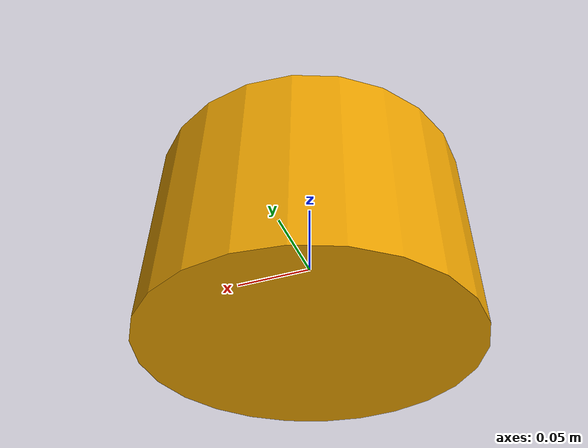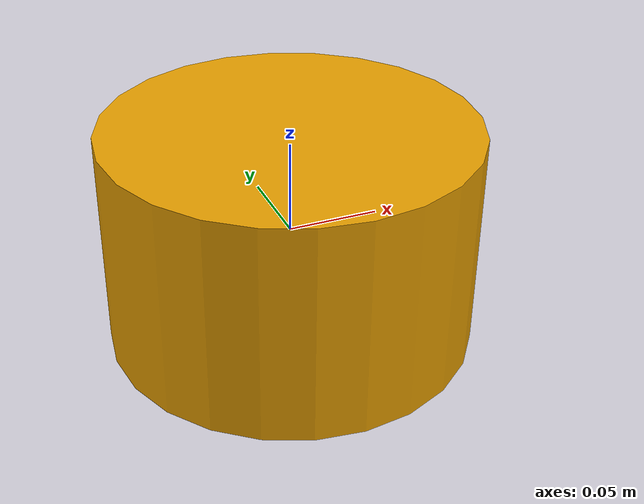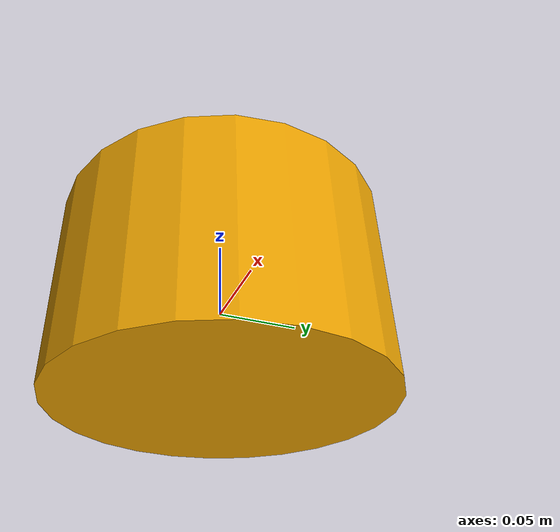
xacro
<?xml version="1.0" ?>
<robot name="create3" xmlns:xacro="http://ros.org/wiki/xacro">
    <link name="base_link">
        <visual>
        <origin xyz="0 0 0.0" rpy="0 0 0"/>
        <geometry>
        <cylinder length="0.12" radius="0.10"/>
        </geometry>
        </visual>
    </link>
</robot>
